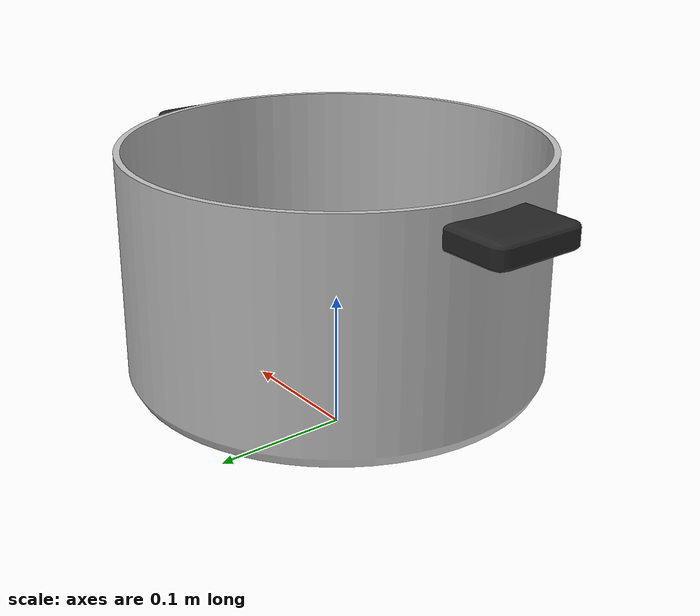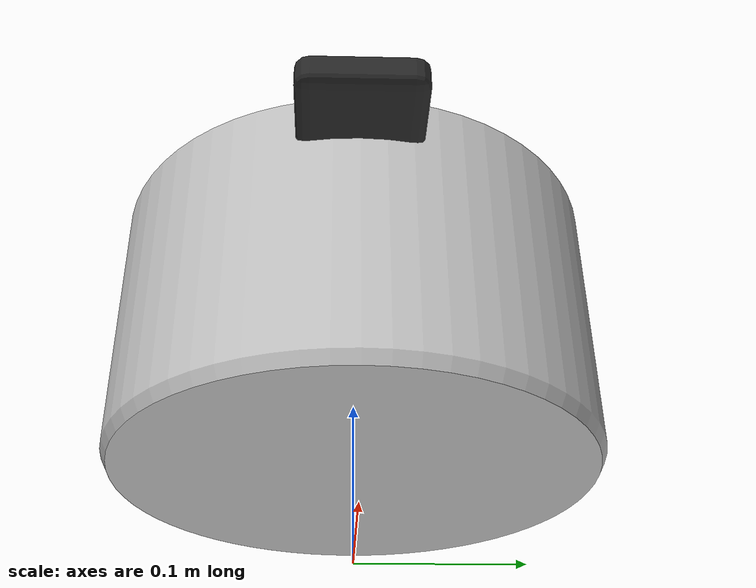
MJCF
<mujoco model="pot">
    <compiler assetdir="assets/" angle="radian"/>

    <asset>
        <mesh scale="0.15 0.15 0.15" file="handle_left_0.stl" name="handle_left_0"/>
        <mesh scale="0.15 0.15 0.15" file="handle_left_1.stl" name="handle_left_1"/>
        <mesh scale="0.15 0.15 0.15" file="handle_left_2.stl" name="handle_left_2"/>
        <mesh scale="0.15 0.15 0.15" file="handle_left_3.stl" name="handle_left_3"/>
        <mesh scale="0.15 0.15 0.15" file="handle_right_0.stl" name="handle_right_0"/>
        <mesh scale="0.15 0.15 0.15" file="handle_right_1.stl" name="handle_right_1"/>
        <mesh scale="0.15 0.15 0.15" file="handle_right_2.stl" name="handle_right_2"/>
        <mesh scale="0.15 0.15 0.15" file="handle_right_3.stl" name="handle_right_3"/>

        <mesh scale="0.15 0.15 0.15" file="pot_base.stl" name="pot_base"/>
        <mesh scale="1 1 1" file="pot_visual.obj" name="pot_visual"/>
        <mesh scale="1 1 1" file="handle_left_visual.obj" name="handle_left_visual"/>
        <mesh scale="1 1 1" file="handle_right_visual.obj" name="handle_right_visual"/>
        <material name="pot_metallic" rgba="0.75 0.75 0.75 1" specular="0.5" shininess="0.8"/>
        <material name="pot_plastic" rgba="0.15 0.15 0.15 1" specular="0.2" shininess="0.3"/>
    </asset>
    <default>
        <default class="chest">
            <default class="visual">
                <geom group="2" contype="0" conaffinity="0"/>
            </default>
            <default class="collision">
                <geom group="3" condim="3" margin="0.001" density="100"/>
            </default>
        </default>
    </default>

    <worldbody>
        <body name="pot_body" pos="0 0 0.05">
            <joint name="pot_joint" type="free"/>
            <geom class="visual" material="pot_metallic" type="mesh" mesh="pot_visual" />
            <geom class="visual" material="pot_plastic" type="mesh" mesh="handle_left_visual" />
            <geom class="visual" material="pot_plastic" type="mesh" mesh="handle_right_visual" />
            <geom class="collision" type="mesh" mesh="pot_base" />
            <geom class="collision" type="mesh" mesh="handle_left_0" />
            <geom class="collision" type="mesh" mesh="handle_left_1" />
            <geom class="collision" type="mesh" mesh="handle_left_2" />
            <geom class="collision" type="mesh" mesh="handle_left_3" />
            <geom class="collision" type="mesh" mesh="handle_right_0" />
            <geom class="collision" type="mesh" mesh="handle_right_1" />
            <geom class="collision" type="mesh" mesh="handle_right_2" />
            <geom class="collision" type="mesh" mesh="handle_right_3" />
        </body>
    </worldbody>
</mujoco>
